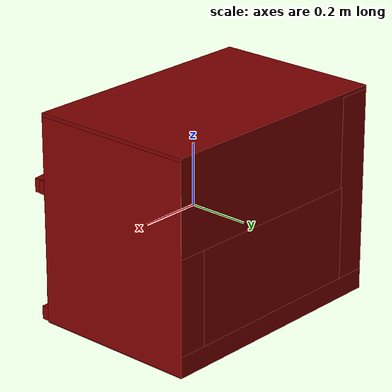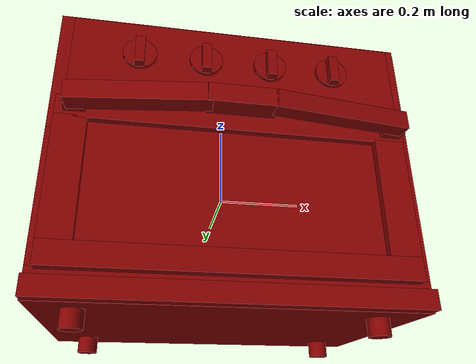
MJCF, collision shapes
<?xml version='1.0' encoding='UTF-8'?>
<mujoco model="model">
  <compiler angle="radian"/>
  <asset>
    <mesh file="visuals/Body001.obj" name="Body001_vis"/>
    <mesh file="visuals/Container001.obj" name="Container001_vis"/>
    <mesh file="visuals/Door001.obj" name="Door001_vis"/>
    <mesh file="visuals/Door001_Clear.obj" name="Door001_Clear_vis"/>
    <mesh file="visuals/Knob001.obj" name="Knob001_vis"/>
    <mesh file="visuals/Knob002.obj" name="Knob002_vis"/>
    <mesh file="visuals/Knob003.obj" name="Knob003_vis"/>
    <mesh file="visuals/Knob004.obj" name="Knob004_vis"/>
    <mesh file="visuals/Shelf001.obj" name="Shelf001_vis"/>
    <texture file="visuals/T_BC001.png" name="Body001_material" type="2d"/>
    <material name="Body001_material" rgba="1 1 1 1.0" texture="Body001_material" shininess="0.2512328028678894" specular="0.5"/>
    <texture file="visuals/T_BC001.png" name="Container001_material" type="2d"/>
    <material name="Container001_material" rgba="1 1 1 1.0" texture="Container001_material" shininess="0.2512328028678894" specular="3"/>
    <texture file="visuals/T_BC001.png" name="Door001_material" type="2d"/>
    <material name="Door001_material" rgba="1 1 1 1.0" texture="Door001_material" shininess="0.2512328028678894" specular="1"/>
    <texture file="visuals/T_BC001.png" name="Door001_Clear_material" type="2d"/>
    <material name="Door001_Clear_material" rgba="1 1 1 0.800000011920929" texture="Door001_Clear_material" shininess="0.2512328028678894" specular="0.3103448502657381"/>
    <texture file="visuals/T_BC001.png" name="Knob001_material" type="2d"/>
    <material name="Knob001_material" rgba="1 1 1 1.0" texture="Knob001_material" shininess="0.2512328028678894" specular="1"/>
    <texture file="visuals/T_BC001.png" name="Knob002_material" type="2d"/>
    <material name="Knob002_material" rgba="1 1 1 1.0" texture="Knob002_material" shininess="0.2512328028678894" specular="1"/>
    <texture file="visuals/T_BC001.png" name="Knob003_material" type="2d"/>
    <material name="Knob003_material" rgba="1 1 1 1.0" texture="Knob003_material" shininess="0.2512328028678894" specular="1"/>
    <texture file="visuals/T_BC001.png" name="Knob004_material" type="2d"/>
    <material name="Knob004_material" rgba="1 1 1 1.0" texture="Knob004_material" shininess="0.2512328028678894" specular="1"/>
    <texture file="visuals/T_BC001.png" name="Shelf001_material" type="2d"/>
    <material name="Shelf001_material" rgba="1 1 1 1.0" texture="Shelf001_material" shininess="0.2512328028678894" specular="3"/>
  </asset>
  <default>
    <default class="visual">
      <geom conaffinity="0" contype="0" group="1" type="mesh"/>
    </default>
    <default class="collision">
      <geom group="0" rgba="0.5 0 0 0.5"/>
    </default>
    <default class="spawn">
      <geom group="0" rgba="1 1 1 0.5" contype="0" conaffinity="0"/>
      <site group="0" rgba="1 1 1 0.5"/>
    </default>
    <default class="region">
      <geom group="1" conaffinity="0" contype="0" rgba="0 1 0 0"/>
    </default>
  </default>
  <worldbody>
    <body>
      <body name="object">
        <geom mesh="Body001_vis" type="mesh" solimp="0.998 0.998 0.001" solref="0.001 1" density="100" friction="0.95 0.3 0.1" class="visual" material="Body001_material"/>
        <geom class="collision" type="box" pos="-0.3560008108615875 0.05530732497572899 0.01423376053571701" size="0.0541805773973465 0.2712756097316742 0.3279663324356079" quat="1.0 0.0 0.0 0.0"/>
        <geom class="collision" type="box" pos="-1.1292286217212677e-07 0.055307161062955856 -0.2817709147930145" size="0.4101794362068176 0.2712758481502533 0.03331412747502327" quat="1.0 0.0 0.0 0.0"/>
        <geom class="collision" type="box" pos="0.356001615524292 0.055378612130880356 0.015737120062112808" size="0.05417964980006218 0.27120041847229004 0.32796710729599" quat="1.0 0.0 0.0 0.0"/>
        <geom class="collision" type="box" pos="-0.0004056335019413382 0.05530491843819618 0.20352600514888763" size="0.40977391600608826 0.27127423882484436 0.1508854180574417" quat="1.0 0.0 0.0 0.0"/>
        <geom class="collision" type="box" pos="-0.00037534430157393217 -0.23091892898082733 0.2280452400445938" size="0.375465452671051 0.013311580754816532 0.09936194121837616" quat="1.0 0.0 0.0 0.0"/>
        <geom class="collision" type="cylinder" pos="0.31834080815315247 -0.14341618120670319 -0.3347505033016205" size="0.024599812924861908 0.019663896411657333" quat="7.549790126404332e-08 -1.0 -0.0 0.0"/>
        <geom class="collision" type="cylinder" pos="-0.32112810015678406 -0.14341618120670319 -0.3347505033016205" size="0.024599812924861908 0.019663896411657333" quat="7.549790126404332e-08 -1.0 -0.0 0.0"/>
        <geom class="collision" type="cylinder" pos="0.31834080815315247 0.24488861858844757 -0.3347505033016205" size="0.024599812924861908 0.019663896411657333" quat="7.549790126404332e-08 -1.0 -0.0 0.0"/>
        <geom class="collision" type="cylinder" pos="-0.32112810015678406 0.24488861858844757 -0.3347505033016205" size="0.024599812924861908 0.019663896411657333" quat="7.549790126404332e-08 -1.0 -0.0 0.0"/>
        <geom class="collision" type="box" pos="0.0029786722734570503 0.20080497860908508 -0.09791024029254913" size="0.31051650643348694 0.1257784217596054 0.15054307878017426" quat="1.0 0.0 0.0 0.0"/>
        <geom class="collision" type="box" pos="-0.30446404218673706 -0.06555430591106415 -0.11145401746034622" size="0.012191119603812695 0.10406499356031418 0.03967514634132385" quat="1.0 0.0 0.0 0.0"/>
        <geom class="collision" type="box" pos="-0.30446404218673706 -0.06555430591106415 -0.18578708171844482" size="0.012191119603812695 0.10406499356031418 0.01970048062503338" quat="1.0 0.0 0.0 0.0"/>
        <geom class="collision" type="box" pos="-0.30446404218673706 -0.047307416796684265 0.030390270054340363" size="0.012191119603812695 0.12231188267469406 0.0152587303891778" quat="1.0 0.0 0.0 0.0"/>
        <geom class="collision" type="box" pos="-0.30446404218673706 0.05890132114291191 -0.019790448248386383" size="0.012191114015877247 0.016103146597743034 0.039868712425231934" quat="1.0 0.0 0.0 0.0"/>
        <geom class="collision" type="box" pos="0.30664825439453125 -0.019284028559923172 -0.031375717371702194" size="0.012191114015877247 0.03157428279519081 0.023034870624542236" quat="1.0 0.0 0.0 0.0"/>
        <geom class="collision" type="box" pos="0.3067401647567749 0.05890132486820221 -0.019790448248386383" size="0.012191114015877247 0.016103146597743034 0.039868712425231934" quat="1.0 0.0 0.0 0.0"/>
        <geom class="collision" type="box" pos="0.3067401647567749 -0.047307416796684265 0.030390270054340363" size="0.012191119603812695 0.12231188267469406 0.0152587303891778" quat="1.0 0.0 0.0 0.0"/>
        <geom class="collision" type="box" pos="0.3040590286254883 -0.06555430591106415 -0.18578708171844482" size="0.012191119603812695 0.10406499356031418 0.01970048062503338" quat="1.0 0.0 0.0 0.0"/>
        <geom class="collision" type="box" pos="-0.30446404218673706 -0.01928403228521347 -0.031375717371702194" size="0.012191114015877247 0.03157428279519081 0.023034870624542236" quat="1.0 0.0 0.0 0.0"/>
        <geom class="collision" type="box" pos="0.3044282793998718 -0.06555430591106415 -0.11145401746034622" size="0.012191119603812695 0.10406499356031418 0.03967514634132385" quat="1.0 0.0 0.0 0.0"/>
        <geom class="collision" type="box" pos="-0.0013080872595310211 0.02759307250380516 -0.2920713424682617" size="0.40746018290519714 0.27127692103385925 0.021344132721424103" quat="1.0 0.0 0.0 0.0"/>
        <body name="Container001">
          <joint axis="0.0 -1.0 0.0" pos="-0.002430705586448312 -0.06614194065332413 -0.09172055870294571" limited="true" name="Container001_joint" range="0.0 0.15" type="slide" damping="1" frictionloss="1" armature=".01" stiffness="0.05"/>
          <geom mesh="Container001_vis" type="mesh" solimp="0.998 0.998 0.001" solref="0.001 1" density="100" friction="0.95 0.3 0.1" class="visual" material="Container001_material"/>
          <geom class="collision" type="box" pos="-0.0012062662281095982 -0.06703557819128036 -0.11519475281238556" size="0.27359315752983093 0.09547214955091476 0.004916195757687092" quat="1.0 0.0 0.0 0.0"/>
          <geom class="collision" type="box" pos="0.00042788631981238723 0.024874145165085793 -0.08852311968803406" size="0.2752324938774109 0.022537050768733025 0.0046686939895153046" quat="0.7430492639541626 0.6692367196083069 -1.4860038977186065e-16 -1.7506540048184013e-23"/>
          <geom class="collision" type="box" pos="-0.27882054448127747 -0.06830936670303345 -0.09034458547830582" size="0.09469785541296005 0.023866573348641396 0.008008441887795925" quat="0.5441762804985046 0.4515220820903778 0.4515220522880554 0.5441762804985046"/>
          <geom class="collision" type="box" pos="0.2791897654533386 -0.06830936670303345 -0.09147557616233826" size="0.09469785541296005 0.023866573348641396 0.008008441887795925" quat="0.5441762804985046 0.4515220820903778 -0.4515220522880554 -0.5441762804985046"/>
          <geom class="collision" type="box" pos="-0.0012062662281095982 -0.16523019969463348 -0.06581614166498184" size="0.2735954523086548 0.011303041130304337 0.0019284473964944482" quat="1.0 0.0 0.0 0.0"/>
          <geom class="collision" type="box" pos="0.27598464488983154 -0.162071093916893 -0.06581614166498184" size="0.011631871573626995 0.009999904781579971 0.0019284584559500217" quat="0.9769896268844604 0.0 0.0 0.213286891579628"/>
          <geom class="collision" type="box" pos="0.29294973611831665 -0.06555139273405075 -0.06581614166498184" size="0.008523775264620781 0.07989787310361862 0.0019284480949863791" quat="1.0 0.0 0.0 0.0"/>
          <geom class="collision" type="box" pos="0.28719422221183777 -0.1506357043981552 -0.06581614166498184" size="0.01251391600817442 0.009694681502878666 0.0019284584559500217" quat="0.8509140014648438 0.0 0.0 0.5253050327301025"/>
          <geom class="collision" type="box" pos="0.2871536612510681 0.01813063956797123 -0.06581614166498184" size="0.01251391600817442 0.009649299085140228 0.0019284584559500217" quat="0.8509140014648438 0.0 -0.0 -0.5253050327301025"/>
          <geom class="collision" type="box" pos="0.2764761745929718 0.029979590326547623 -0.06581614166498184" size="0.011631871573626995 0.009999904781579971 0.0019284584559500217" quat="0.9769896268844604 0.0 -0.0 -0.213286891579628"/>
          <geom class="collision" type="box" pos="-0.0012062648311257362 0.032745469361543655 -0.06581614166498184" size="0.27359580993652344 0.011303052306175232 0.00192844879347831" quat="1.0 0.0 0.0 0.0"/>
          <geom class="collision" type="box" pos="-0.2763080894947052 0.03140183538198471 -0.06581614166498184" size="0.011631871573626995 0.00836316216737032 0.0019284584559500217" quat="0.9769896268844604 0.0 0.0 0.213286891579628"/>
          <geom class="collision" type="box" pos="-0.28795042634010315 0.01929796114563942 -0.06581614166498184" size="0.010604853741824627 0.008445714600384235 0.0019284584559500217" quat="0.8509140014648438 0.0 0.0 0.5253050327301025"/>
          <geom class="collision" type="box" pos="-0.28853824734687805 -0.14994186162948608 -0.06581614166498184" size="0.01251391600817442 0.008146305568516254 0.0019284584559500217" quat="0.8509140014648438 0.0 -0.0 -0.5253050327301025"/>
          <geom class="collision" type="box" pos="-0.29399117827415466 -0.06555139273405075 -0.06581614166498184" size="0.0068370504304766655 0.07989796251058578 0.001928449491970241" quat="1.0 0.0 0.0 0.0"/>
          <geom class="collision" type="box" pos="-0.27717533707618713 -0.16193680465221405 -0.06581614166498184" size="0.010290185920894146 0.009117785841226578 0.0019284584559500217" quat="0.9769896268844604 0.0 -0.0 -0.213286891579628"/>
          <geom class="collision" type="box" pos="-0.0007350112427957356 -0.1584184318780899 -0.08896856009960175" size="0.27406957745552063 0.022984929382801056 0.0046686939895153046" quat="0.7430492639541626 -0.6692367196083069 -1.4860038977186065e-16 1.7506540048184013e-23"/>
        </body>
        <body name="Door001">
          <joint axis="1.0 0.0 0.0" pos="5.662441253662109e-07 -0.24330870807170868 -0.2669953405857086" limited="true" name="Door001_joint" range="0.0 1.5707963267948966" type="hinge" damping="1" frictionloss="1" armature=".01" stiffness="0.05"/>
          <geom mesh="Door001_vis" type="mesh" solimp="0.998 0.998 0.001" solref="0.001 1" density="100" friction="0.95 0.3 0.1" class="visual" material="Door001_material"/>
          <geom class="collision" type="box" pos="-0.0039738137274980545 -0.23091892898082733 0.09128674119710922" size="0.3886660039424896 0.013311710208654404 0.02566441148519516" quat="1.0 0.0 0.0 0.0"/>
          <geom class="collision" type="box" pos="-0.35790637135505676 -0.23091892898082733 -0.08848544210195541" size="0.034739818423986435 0.013311725109815598 0.1588665395975113" quat="1.0 0.0 0.0 0.0"/>
          <geom class="collision" type="box" pos="0.34896087646484375 -0.23091892898082733 -0.08848544210195541" size="0.034739866852760315 0.013311737217009068 0.1588667333126068" quat="1.0 0.0 0.0 0.0"/>
          <geom class="collision" type="box" pos="0.35255375504493713 -0.257743775844574 0.09920641034841537" size="0.023440735414624214 0.013744122348725796 0.02114536613225937" quat="1.0 0.0 0.0 0.0"/>
          <geom class="collision" type="box" pos="-0.3525537848472595 -0.257743775844574 0.09920641034841537" size="0.02344086393713951 0.013744134455919266 0.02114538848400116" quat="1.0 0.0 0.0 0.0"/>
          <geom class="collision" type="box" pos="0.21773481369018555 -0.29235056042671204 0.09974122047424316" size="0.02168053388595581 0.017513243481516838 0.15640059113502502" quat="0.7057958245277405 0.043037790805101395 -0.7057958245277405 0.04303779453039169"/>
          <geom class="collision" type="box" pos="-0.21904897689819336 -0.2900209128856659 0.09984296560287476" size="0.021782271564006805 0.020274071022868156 0.1525651067495346" quat="0.7058020830154419 -0.04293544963002205 -0.7058020234107971 -0.04293544590473175"/>
          <geom class="collision" type="box" pos="-0.005806652829051018 -0.30553707480430603 0.09974122792482376" size="0.07425827533006668 0.02311614155769348 0.021680228412151337" quat="1.0 0.0 0.0 0.0"/>
          <geom class="collision" type="box" pos="-0.0039738137274980545 -0.23091892898082733 -0.22958776354789734" size="0.3886697590351105 0.013311827555298805 0.025664644315838814" quat="1.0 0.0 0.0 0.0"/>
          <body name="Door001_Clear">
            <geom mesh="Door001_Clear_vis" type="mesh" solimp="0.998 0.998 0.001" solref="0.001 1" density="100" friction="0.95 0.3 0.1" class="visual" material="Door001_Clear_material"/>
            <geom class="collision" type="box" pos="-0.0013120429357513785 -0.2235126495361328 -0.07751674950122833" size="0.32188692688941956 0.003752719145268202 0.14606012403964996" quat="1.0 0.0 0.0 0.0"/>
          </body>
        </body>
        <body name="Knob001">
          <joint axis="0.0 1.0 0.0" pos="-0.22405008971691132 -0.2695924639701843 0.22957409918308258" limited="true" name="Knob001_joint" range="0.0 5.235987755982989" type="hinge" damping="0.05" armature="0.001"/>
          <geom mesh="Knob001_vis" type="mesh" solimp="0.998 0.998 0.001" solref="0.001 1" density="100" friction="0.95 0.3 0.1" class="visual" material="Knob001_material"/>
          <geom class="collision" type="cylinder" pos="-0.22411006689071655 -0.2619580924510956 0.22902646660804749" size="0.03739810362458229 0.004008350428193808" quat="0.7071067094802856 0.7071068286895752 0.0 0.0"/>
          <geom class="collision" type="box" pos="-0.22427600622177124 -0.27465754747390747 0.2275896668434143" size="0.010634497739374638 0.008691372349858284 0.03324255347251892" quat="1.0 0.0 0.0 0.0"/>
        </body>
        <body name="Knob002">
          <joint axis="0.0 1.0 0.0" pos="-0.07669051736593246 -0.2695924639701843 0.22957409918308258" limited="true" name="Knob002_joint" range="0.0 3.5779249665883754" type="hinge" damping="0.05" armature="0.001"/>
          <geom mesh="Knob002_vis" type="mesh" solimp="0.998 0.998 0.001" solref="0.001 1" density="100" friction="0.95 0.3 0.1" class="visual" material="Knob002_material"/>
          <geom class="collision" type="cylinder" pos="-0.07658664137125015 -0.2619580924510956 0.22902646660804749" size="0.03739810362458229 0.004008350428193808" quat="0.7071067094802856 0.7071068286895752 0.0 0.0"/>
          <geom class="collision" type="box" pos="-0.07690310478210449 -0.27465754747390747 0.2281494289636612" size="0.010634521953761578 0.008691387251019478 0.0332426093518734" quat="1.0 0.0 0.0 0.0"/>
        </body>
        <body name="Knob003">
          <joint axis="0.0 1.0 0.0" pos="0.070595383644104 -0.2695924639701843 0.22957409918308258" limited="true" name="Knob003_joint" range="0.0 3.141592653589793" type="hinge" damping="0.05" armature="0.001"/>
          <geom mesh="Knob003_vis" type="mesh" solimp="0.998 0.998 0.001" solref="0.001 1" density="100" friction="0.95 0.3 0.1" class="visual" material="Knob003_material"/>
          <geom class="collision" type="cylinder" pos="0.07020571827888489 -0.2619580924510956 0.22948023676872253" size="0.03739810362458229 0.004008350428193808" quat="0.7071067094802856 0.7071068286895752 0.0 0.0"/>
          <geom class="collision" type="box" pos="0.0713779479265213 -0.27465754747390747 0.22821158170700073" size="0.010634534992277622 0.008691400289535522 0.033242661505937576" quat="1.0 0.0 0.0 0.0"/>
        </body>
        <body name="Knob004">
          <joint axis="0.0 1.0 0.0" pos="0.21739795804023743 -0.2695924639701843 0.22957409918308258" limited="true" name="Knob004_joint" range="0.0 4.71238898038469" type="hinge" damping="0.05" armature="0.001"/>
          <geom mesh="Knob004_vis" type="mesh" solimp="0.998 0.998 0.001" solref="0.001 1" density="100" friction="0.95 0.3 0.1" class="visual" material="Knob004_material"/>
          <geom class="collision" type="cylinder" pos="0.21738289296627045 -0.2619580924510956 0.22948023676872253" size="0.03739810362458229 0.004008350428193808" quat="0.7071067094802856 0.7071068286895752 0.0 0.0"/>
          <geom class="collision" type="box" pos="0.21721693873405457 -0.27465754747390747 0.22804343700408936" size="0.010634536854922771 0.008691411465406418 0.033242709934711456" quat="1.0 0.0 0.0 0.0"/>
        </body>
        <body name="Shelf001">
          <joint axis="0.0 -1.0 0.0" pos="0.0016162358224391937 -0.06778070330619812 -0.1922188699245453" limited="true" name="Shelf001_joint" range="0.0 0.15" type="slide" damping="1" frictionloss="1" armature=".01" stiffness="0.05"/>
          <geom mesh="Shelf001_vis" type="mesh" solimp="0.998 0.998 0.001" solref="0.001 1" density="100" friction="0.95 0.3 0.1" class="visual" material="Shelf001_material"/>
          <geom class="collision" type="box" pos="0.0011112364009022713 -0.06730316579341888 -0.2058584988117218" size="0.2786617875099182 0.10851982980966568 0.004268457181751728" quat="1.0 0.0 0.0 0.0"/>
          <geom class="collision" type="box" pos="-0.27432969212532043 -0.06730315089225769 -0.1828484684228897" size="0.004268484655767679 0.10851991176605225 0.0191865973174572" quat="1.0 0.0 0.0 0.0"/>
          <geom class="collision" type="box" pos="0.2761322855949402 -0.06730315089225769 -0.1828484684228897" size="0.0042684925720095634 0.10852004587650299 0.019186630845069885" quat="1.0 0.0 0.0 0.0"/>
          <geom class="collision" type="box" pos="-0.28446218371391296 -0.06730315089225769 -0.16047921776771545" size="0.004268570803105831 0.10852129012346268 0.014717856422066689" quat="0.7465862035751343 2.792577367266569e-13 -0.6652886867523193 -8.938734197272424e-08"/>
          <geom class="collision" type="box" pos="0.28520485758781433 -0.06730315089225769 -0.16065503656864166" size="0.004268570803105831 0.10852129012346268 0.013186099007725716" quat="0.7465862035751343 1.6580587272087277e-13 0.6652886867523193 8.938746276498932e-08"/>
        </body>
        <geom class="region" name="reg_main" type="box" pos="-7.450580596923828e-09 0.03343893587589264 0.0" size="0.4201844036579132 0.2931462526321411 0.3544144332408905"/>
        <geom class="region" name="reg_int" type="box" pos="6.623566150665283e-05 -0.06123039126396179 -0.0994688905775547" size="0.30195845663547516 0.15628202259540558 0.1704336665570736"/>
      </body>
    </body>
  </worldbody>
  <actuator>
    <motor name="Container001_joint_actuator" joint="Container001_joint" gear="10"/>
    <motor name="Door001_joint_actuator" joint="Door001_joint" gear="10"/>
    <motor name="Knob001_joint_actuator" joint="Knob001_joint" gear="10"/>
    <motor name="Knob002_joint_actuator" joint="Knob002_joint" gear="10"/>
    <motor name="Knob003_joint_actuator" joint="Knob003_joint" gear="10"/>
    <motor name="Knob004_joint_actuator" joint="Knob004_joint" gear="10"/>
    <motor name="Shelf001_joint_actuator" joint="Shelf001_joint" gear="10"/>
  </actuator>
</mujoco>
